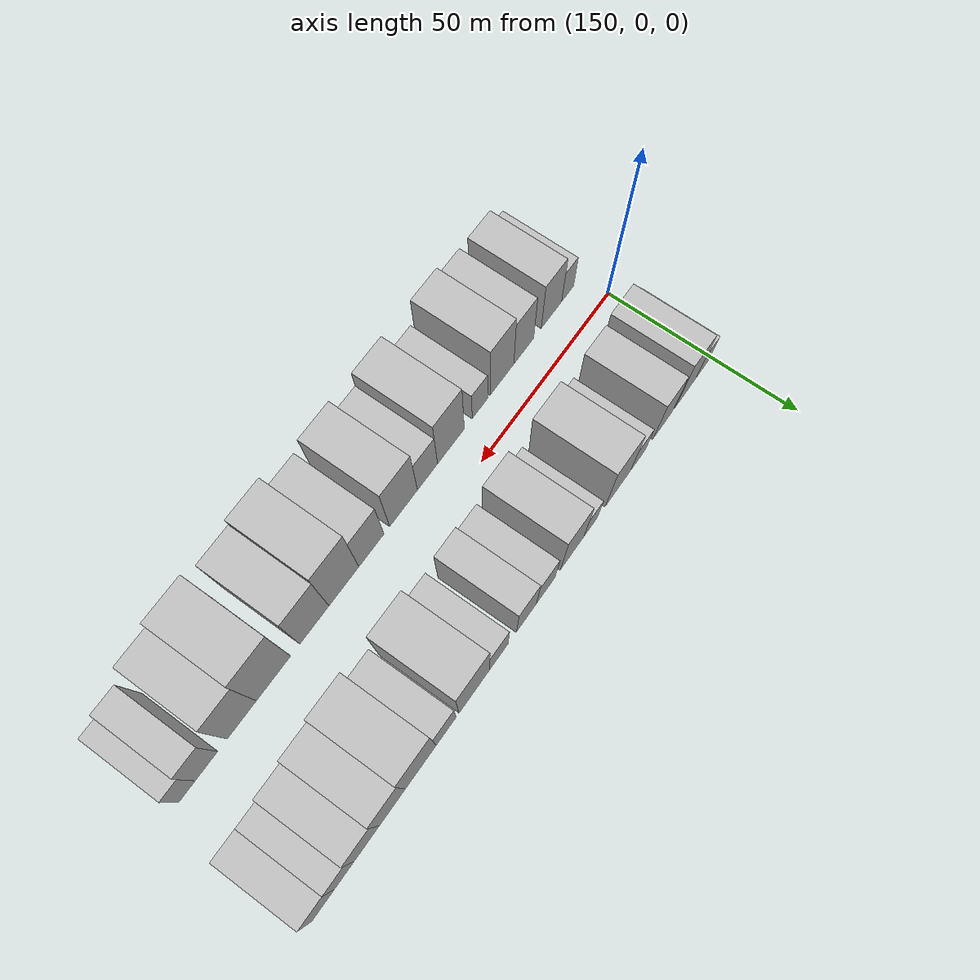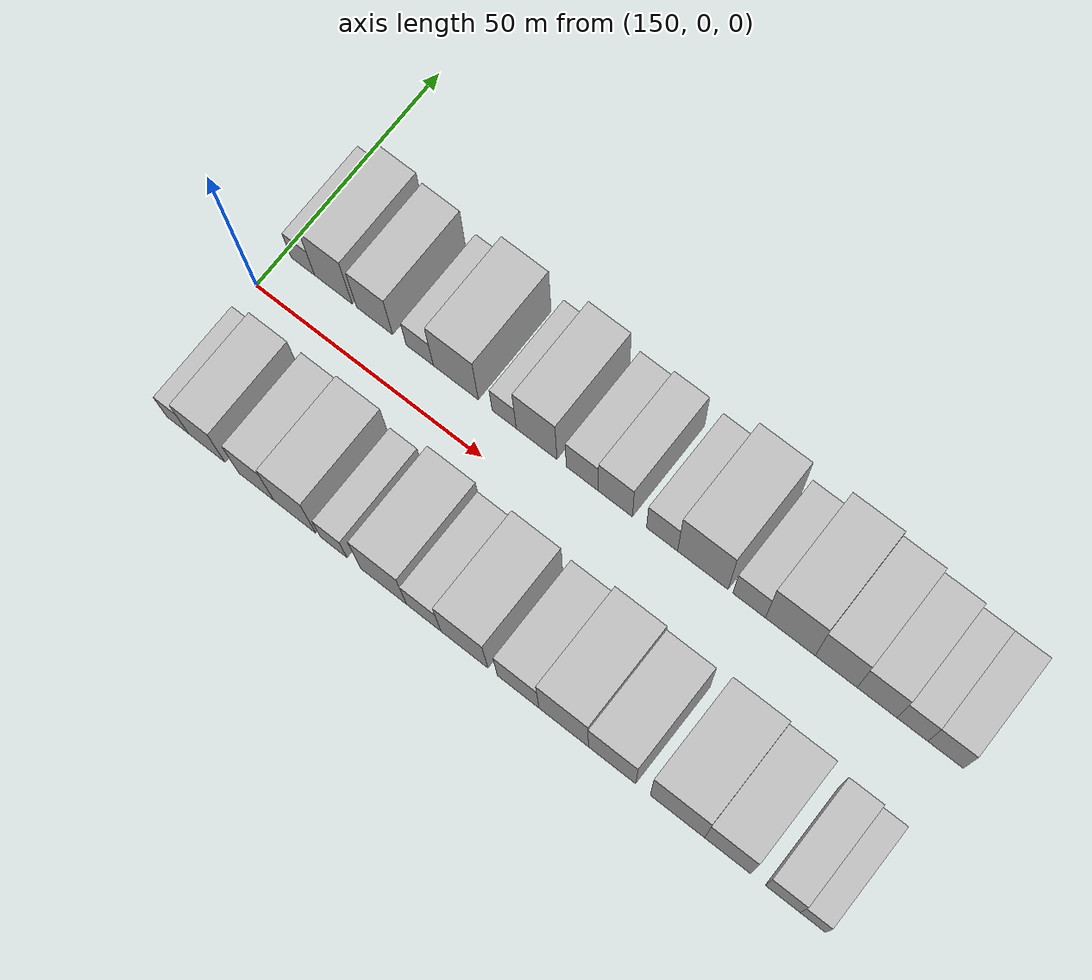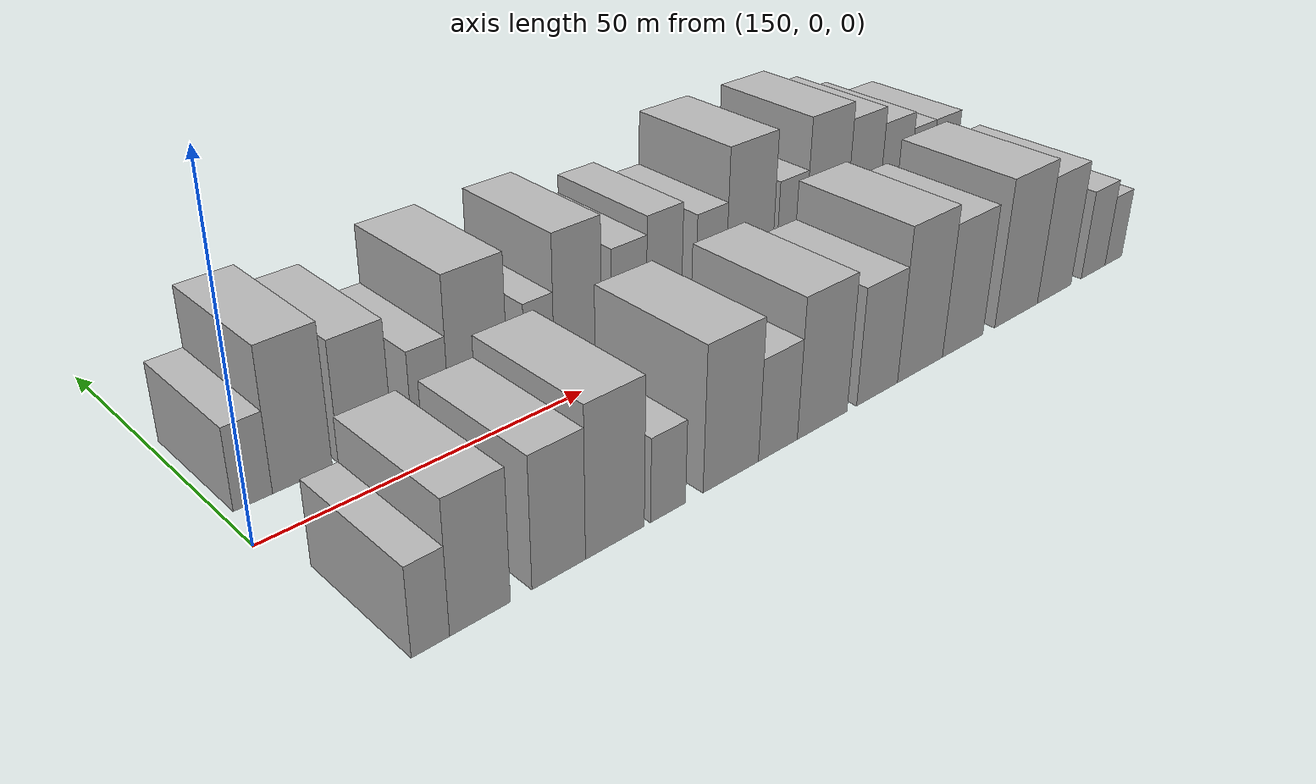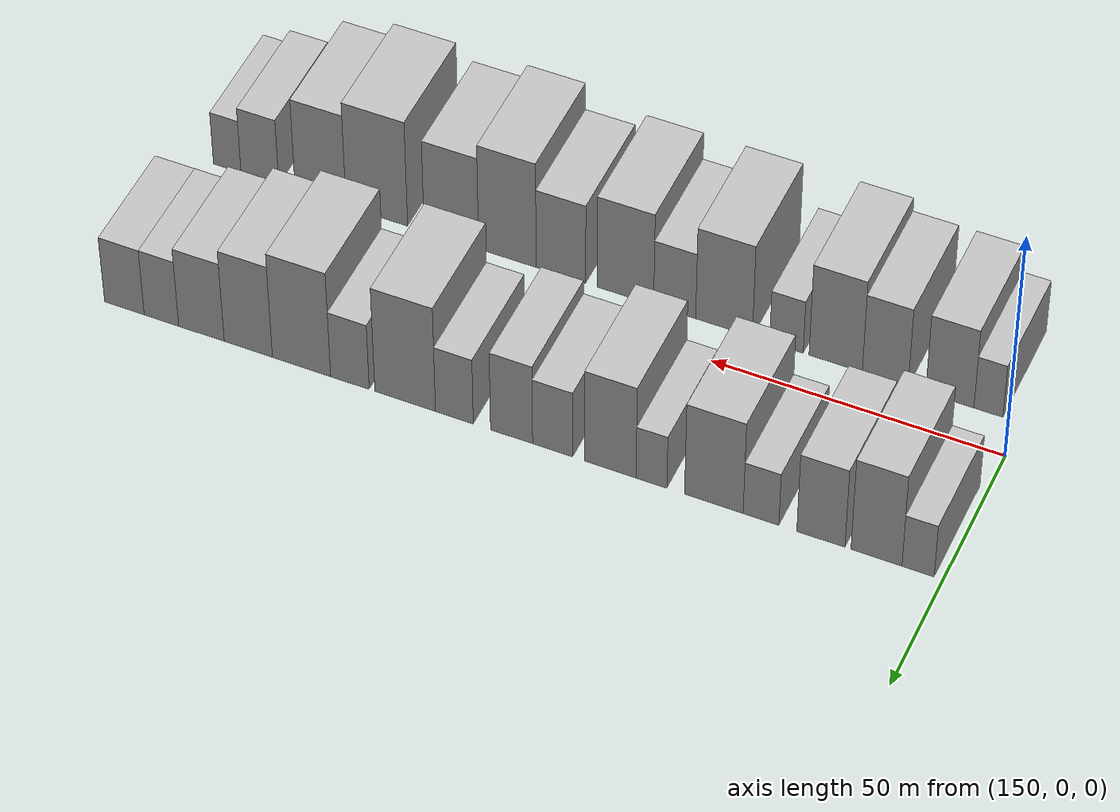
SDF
<sdf version="1.6">
 <world name="default">
  <model name="building_16">
   <static>1</static>
   <pose>154.1095 17.5000 0 0.000000 0.000000 1.570796</pose>
   <link name="link">
    <pose>0 0 6.00 0 0 0</pose>
    <collision name="collision"><geometry><box><size>20.0000 5.3130 12.0000</size></box></geometry></collision>
    <visual name="visual">
     <cast_shadows>0</cast_shadows>
     <geometry><box><size>20.0000 5.3130 12.0000</size></box></geometry>
     <material>
      <script>
       <uri>model://HANNAS_wall/materials/scripts</uri>
       <uri>model://HANNAS_wall/materials/textures</uri>
       <name>vrc/HANNAS_wall</name>
      </script>
     </material>
    </visual>
   </link>
  </model>
  <model name="building_17">
   <static>1</static>
   <pose>160.9851 17.5000 0 0.000000 0.000000 1.570796</pose>
   <link name="link">
    <pose>0 0 10.50 0 0 0</pose>
    <collision name="collision"><geometry><box><size>20.0000 8.4382 21.0000</size></box></geometry></collision>
    <visual name="visual">
     <cast_shadows>0</cast_shadows>
     <geometry><box><size>20.0000 8.4382 21.0000</size></box></geometry>
     <material>
      <script>
       <uri>model://HANNAS_wall/materials/scripts</uri>
       <uri>model://HANNAS_wall/materials/textures</uri>
       <name>vrc/HANNAS_wall</name>
      </script>
     </material>
    </visual>
   </link>
  </model>
  <model name="building_18">
   <static>1</static>
   <pose>170.2127 17.5000 0 0.000000 0.000000 1.570796</pose>
   <link name="link">
    <pose>0 0 9.00 0 0 0</pose>
    <collision name="collision"><geometry><box><size>20.0000 8.0170 18.0000</size></box></geometry></collision>
    <visual name="visual">
     <cast_shadows>0</cast_shadows>
     <geometry><box><size>20.0000 8.0170 18.0000</size></box></geometry>
     <material>
      <script>
       <uri>model://HANNAS_wall/materials/scripts</uri>
       <uri>model://HANNAS_wall/materials/textures</uri>
       <name>vrc/HANNAS_wall</name>
      </script>
     </material>
    </visual>
   </link>
  </model>
  <model name="building_19">
   <static>1</static>
   <pose>180.2199 17.5000 0 0.000000 0.000000 1.570796</pose>
   <link name="link">
    <pose>0 0 6.00 0 0 0</pose>
    <collision name="collision"><geometry><box><size>20.0000 5.9976 12.0000</size></box></geometry></collision>
    <visual name="visual">
     <cast_shadows>0</cast_shadows>
     <geometry><box><size>20.0000 5.9976 12.0000</size></box></geometry>
     <material>
      <script>
       <uri>model://HANNAS_wall/materials/scripts</uri>
       <uri>model://HANNAS_wall/materials/textures</uri>
       <name>vrc/HANNAS_wall</name>
      </script>
     </material>
    </visual>
   </link>
  </model>
  <model name="building_20">
   <static>1</static>
   <pose>188.1615 17.5000 0 0.000000 0.000000 1.570796</pose>
   <link name="link">
    <pose>0 0 10.50 0 0 0</pose>
    <collision name="collision"><geometry><box><size>20.0000 9.8854 21.0000</size></box></geometry></collision>
    <visual name="visual">
     <cast_shadows>0</cast_shadows>
     <geometry><box><size>20.0000 9.8854 21.0000</size></box></geometry>
     <material>
      <script>
       <uri>model://HANNAS_wall/materials/scripts</uri>
       <uri>model://HANNAS_wall/materials/textures</uri>
       <name>vrc/HANNAS_wall</name>
      </script>
     </material>
    </visual>
   </link>
  </model>
  <model name="building_21">
   <static>1</static>
   <pose>198.7292 17.5000 0 0.000000 0.000000 1.570796</pose>
   <link name="link">
    <pose>0 0 6.00 0 0 0</pose>
    <collision name="collision"><geometry><box><size>20.0000 5.2500 12.0000</size></box></geometry></collision>
    <visual name="visual">
     <cast_shadows>0</cast_shadows>
     <geometry><box><size>20.0000 5.2500 12.0000</size></box></geometry>
     <material>
      <script>
       <uri>model://HANNAS_wall/materials/scripts</uri>
       <uri>model://HANNAS_wall/materials/textures</uri>
       <name>vrc/HANNAS_wall</name>
      </script>
     </material>
    </visual>
   </link>
  </model>
  <model name="building_22">
   <static>1</static>
   <pose>205.7649 17.5000 0 0.000000 0.000000 1.570796</pose>
   <link name="link">
    <pose>0 0 10.50 0 0 0</pose>
    <collision name="collision"><geometry><box><size>20.0000 8.8215 21.0000</size></box></geometry></collision>
    <visual name="visual">
     <cast_shadows>0</cast_shadows>
     <geometry><box><size>20.0000 8.8215 21.0000</size></box></geometry>
     <material>
      <script>
       <uri>model://HANNAS_wall/materials/scripts</uri>
       <uri>model://HANNAS_wall/materials/textures</uri>
       <name>vrc/HANNAS_wall</name>
      </script>
     </material>
    </visual>
   </link>
  </model>
  <model name="building_23">
   <static>1</static>
   <pose>215.6237 17.5000 0 0.000000 0.000000 1.570796</pose>
   <link name="link">
    <pose>0 0 7.50 0 0 0</pose>
    <collision name="collision"><geometry><box><size>20.0000 6.8962 15.0000</size></box></geometry></collision>
    <visual name="visual">
     <cast_shadows>0</cast_shadows>
     <geometry><box><size>20.0000 6.8962 15.0000</size></box></geometry>
     <material>
      <script>
       <uri>model://HANNAS_wall/materials/scripts</uri>
       <uri>model://HANNAS_wall/materials/textures</uri>
       <name>vrc/HANNAS_wall</name>
      </script>
     </material>
    </visual>
   </link>
  </model>
  <model name="building_24">
   <static>1</static>
   <pose>222.7082 17.5000 0 0.000000 0.000000 1.570796</pose>
   <link name="link">
    <pose>0 0 9.00 0 0 0</pose>
    <collision name="collision"><geometry><box><size>20.0000 7.2728 18.0000</size></box></geometry></collision>
    <visual name="visual">
     <cast_shadows>0</cast_shadows>
     <geometry><box><size>20.0000 7.2728 18.0000</size></box></geometry>
     <material>
      <script>
       <uri>model://HANNAS_wall/materials/scripts</uri>
       <uri>model://HANNAS_wall/materials/textures</uri>
       <name>vrc/HANNAS_wall</name>
      </script>
     </material>
    </visual>
   </link>
  </model>
  <model name="building_25">
   <static>1</static>
   <pose>232.6329 17.5000 0 0.000000 0.000000 1.570796</pose>
   <link name="link">
    <pose>0 0 7.50 0 0 0</pose>
    <collision name="collision"><geometry><box><size>20.0000 6.5765 15.0000</size></box></geometry></collision>
    <visual name="visual">
     <cast_shadows>0</cast_shadows>
     <geometry><box><size>20.0000 6.5765 15.0000</size></box></geometry>
     <material>
      <script>
       <uri>model://HANNAS_wall/materials/scripts</uri>
       <uri>model://HANNAS_wall/materials/textures</uri>
       <name>vrc/HANNAS_wall</name>
      </script>
     </material>
    </visual>
   </link>
  </model>
  <model name="building_26">
   <static>1</static>
   <pose>241.2340 17.5000 0 0.000000 0.000000 1.570796</pose>
   <link name="link">
    <pose>0 0 12.00 0 0 0</pose>
    <collision name="collision"><geometry><box><size>20.0000 10.6257 24.0000</size></box></geometry></collision>
    <visual name="visual">
     <cast_shadows>0</cast_shadows>
     <geometry><box><size>20.0000 10.6257 24.0000</size></box></geometry>
     <material>
      <script>
       <uri>model://HANNAS_wall/materials/scripts</uri>
       <uri>model://HANNAS_wall/materials/textures</uri>
       <name>vrc/HANNAS_wall</name>
      </script>
     </material>
    </visual>
   </link>
  </model>
  <model name="building_27">
   <static>1</static>
   <pose>250.9435 17.5000 0 0.000000 0.000000 1.570796</pose>
   <link name="link">
    <pose>0 0 7.50 0 0 0</pose>
    <collision name="collision"><geometry><box><size>20.0000 6.7933 15.0000</size></box></geometry></collision>
    <visual name="visual">
     <cast_shadows>0</cast_shadows>
     <geometry><box><size>20.0000 6.7933 15.0000</size></box></geometry>
     <material>
      <script>
       <uri>model://HANNAS_wall/materials/scripts</uri>
       <uri>model://HANNAS_wall/materials/textures</uri>
       <name>vrc/HANNAS_wall</name>
      </script>
     </material>
    </visual>
   </link>
  </model>
  <model name="building_28">
   <static>1</static>
   <pose>259.5029 17.5000 0 0.000000 0.000000 1.570796</pose>
   <link name="link">
    <pose>0 0 12.00 0 0 0</pose>
    <collision name="collision"><geometry><box><size>20.0000 10.3254 24.0000</size></box></geometry></collision>
    <visual name="visual">
     <cast_shadows>0</cast_shadows>
     <geometry><box><size>20.0000 10.3254 24.0000</size></box></geometry>
     <material>
      <script>
       <uri>model://HANNAS_wall/materials/scripts</uri>
       <uri>model://HANNAS_wall/materials/textures</uri>
       <name>vrc/HANNAS_wall</name>
      </script>
     </material>
    </visual>
   </link>
  </model>
  <model name="building_29">
   <static>1</static>
   <pose>268.9678 17.5000 0 0.000000 0.000000 1.570796</pose>
   <link name="link">
    <pose>0 0 10.50 0 0 0</pose>
    <collision name="collision"><geometry><box><size>20.0000 8.6045 21.0000</size></box></geometry></collision>
    <visual name="visual">
     <cast_shadows>0</cast_shadows>
     <geometry><box><size>20.0000 8.6045 21.0000</size></box></geometry>
     <material>
      <script>
       <uri>model://HANNAS_wall/materials/scripts</uri>
       <uri>model://HANNAS_wall/materials/textures</uri>
       <name>vrc/HANNAS_wall</name>
      </script>
     </material>
    </visual>
   </link>
  </model>
  <model name="building_30">
   <static>1</static>
   <pose>277.3589 17.5000 0 0.000000 0.000000 1.570796</pose>
   <link name="link">
    <pose>0 0 9.00 0 0 0</pose>
    <collision name="collision"><geometry><box><size>20.0000 8.1776 18.0000</size></box></geometry></collision>
    <visual name="visual">
     <cast_shadows>0</cast_shadows>
     <geometry><box><size>20.0000 8.1776 18.0000</size></box></geometry>
     <material>
      <script>
       <uri>model://HANNAS_wall/materials/scripts</uri>
       <uri>model://HANNAS_wall/materials/textures</uri>
       <name>vrc/HANNAS_wall</name>
      </script>
     </material>
    </visual>
   </link>
  </model>
  <model name="building_31">
   <static>1</static>
   <pose>284.5624 17.5000 0 0.000000 0.000000 1.570796</pose>
   <link name="link">
    <pose>0 0 7.50 0 0 0</pose>
    <collision name="collision"><geometry><box><size>20.0000 6.2294 15.0000</size></box></geometry></collision>
    <visual name="visual">
     <cast_shadows>0</cast_shadows>
     <geometry><box><size>20.0000 6.2294 15.0000</size></box></geometry>
     <material>
      <script>
       <uri>model://HANNAS_wall/materials/scripts</uri>
       <uri>model://HANNAS_wall/materials/textures</uri>
       <name>vrc/HANNAS_wall</name>
      </script>
     </material>
    </visual>
   </link>
  </model>
  <model name="building_32">
   <static>1</static>
   <pose>291.2573 17.5000 0 0.000000 0.000000 1.570796</pose>
   <link name="link">
    <pose>0 0 7.50 0 0 0</pose>
    <collision name="collision"><geometry><box><size>20.0000 7.1604 15.0000</size></box></geometry></collision>
    <visual name="visual">
     <cast_shadows>0</cast_shadows>
     <geometry><box><size>20.0000 7.1604 15.0000</size></box></geometry>
     <material>
      <script>
       <uri>model://HANNAS_wall/materials/scripts</uri>
       <uri>model://HANNAS_wall/materials/textures</uri>
       <name>vrc/HANNAS_wall</name>
      </script>
     </material>
    </visual>
   </link>
  </model>
  <model name="building_47">
   <static>1</static>
   <pose>155.6169 -17.5000 0 0.000000 0.000000 1.570796</pose>
   <link name="link">
    <pose>0 0 6.00 0 0 0</pose>
    <collision name="collision"><geometry><box><size>20.0000 4.9023 12.0000</size></box></geometry></collision>
    <visual name="visual">
     <cast_shadows>0</cast_shadows>
     <geometry><box><size>20.0000 4.9023 12.0000</size></box></geometry>
     <material>
      <script>
       <uri>model://HANNAS_wall/materials/scripts</uri>
       <uri>model://HANNAS_wall/materials/textures</uri>
       <name>vrc/HANNAS_wall</name>
      </script>
     </material>
    </visual>
   </link>
  </model>
  <model name="building_48">
   <static>1</static>
   <pose>162.1531 -17.5000 0 0.000000 0.000000 1.570796</pose>
   <link name="link">
    <pose>0 0 9.00 0 0 0</pose>
    <collision name="collision"><geometry><box><size>20.0000 8.1699 18.0000</size></box></geometry></collision>
    <visual name="visual">
     <cast_shadows>0</cast_shadows>
     <geometry><box><size>20.0000 8.1699 18.0000</size></box></geometry>
     <material>
      <script>
       <uri>model://HANNAS_wall/materials/scripts</uri>
       <uri>model://HANNAS_wall/materials/textures</uri>
       <name>vrc/HANNAS_wall</name>
      </script>
     </material>
    </visual>
   </link>
  </model>
  <model name="building_49">
   <static>1</static>
   <pose>173.1528 -17.5000 0 0.000000 0.000000 1.570796</pose>
   <link name="link">
    <pose>0 0 9.00 0 0 0</pose>
    <collision name="collision"><geometry><box><size>20.0000 7.8295 18.0000</size></box></geometry></collision>
    <visual name="visual">
     <cast_shadows>0</cast_shadows>
     <geometry><box><size>20.0000 7.8295 18.0000</size></box></geometry>
     <material>
      <script>
       <uri>model://HANNAS_wall/materials/scripts</uri>
       <uri>model://HANNAS_wall/materials/textures</uri>
       <name>vrc/HANNAS_wall</name>
      </script>
     </material>
    </visual>
   </link>
  </model>
  <model name="building_50">
   <static>1</static>
   <pose>181.6432 -17.5000 0 0.000000 0.000000 1.570796</pose>
   <link name="link">
    <pose>0 0 10.50 0 0 0</pose>
    <collision name="collision"><geometry><box><size>20.0000 9.1513 21.0000</size></box></geometry></collision>
    <visual name="visual">
     <cast_shadows>0</cast_shadows>
     <geometry><box><size>20.0000 9.1513 21.0000</size></box></geometry>
     <material>
      <script>
       <uri>model://HANNAS_wall/materials/scripts</uri>
       <uri>model://HANNAS_wall/materials/textures</uri>
       <name>vrc/HANNAS_wall</name>
      </script>
     </material>
    </visual>
   </link>
  </model>
  <model name="building_51">
   <static>1</static>
   <pose>190.1180 -17.5000 0 0.000000 0.000000 1.570796</pose>
   <link name="link">
    <pose>0 0 6.00 0 0 0</pose>
    <collision name="collision"><geometry><box><size>20.0000 5.7983 12.0000</size></box></geometry></collision>
    <visual name="visual">
     <cast_shadows>0</cast_shadows>
     <geometry><box><size>20.0000 5.7983 12.0000</size></box></geometry>
     <material>
      <script>
       <uri>model://HANNAS_wall/materials/scripts</uri>
       <uri>model://HANNAS_wall/materials/textures</uri>
       <name>vrc/HANNAS_wall</name>
      </script>
     </material>
    </visual>
   </link>
  </model>
  <model name="building_52">
   <static>1</static>
   <pose>200.9670 -17.5000 0 0.000000 0.000000 1.570796</pose>
   <link name="link">
    <pose>0 0 10.50 0 0 0</pose>
    <collision name="collision"><geometry><box><size>20.0000 9.8997 21.0000</size></box></geometry></collision>
    <visual name="visual">
     <cast_shadows>0</cast_shadows>
     <geometry><box><size>20.0000 9.8997 21.0000</size></box></geometry>
     <material>
      <script>
       <uri>model://HANNAS_wall/materials/scripts</uri>
       <uri>model://HANNAS_wall/materials/textures</uri>
       <name>vrc/HANNAS_wall</name>
      </script>
     </material>
    </visual>
   </link>
  </model>
  <model name="building_53">
   <static>1</static>
   <pose>209.5928 -17.5000 0 0.000000 0.000000 1.570796</pose>
   <link name="link">
    <pose>0 0 7.50 0 0 0</pose>
    <collision name="collision"><geometry><box><size>20.0000 7.3520 15.0000</size></box></geometry></collision>
    <visual name="visual">
     <cast_shadows>0</cast_shadows>
     <geometry><box><size>20.0000 7.3520 15.0000</size></box></geometry>
     <material>
      <script>
       <uri>model://HANNAS_wall/materials/scripts</uri>
       <uri>model://HANNAS_wall/materials/textures</uri>
       <name>vrc/HANNAS_wall</name>
      </script>
     </material>
    </visual>
   </link>
  </model>
  <model name="building_54">
   <static>1</static>
   <pose>218.2626 -17.5000 0 0.000000 0.000000 1.570796</pose>
   <link name="link">
    <pose>0 0 10.50 0 0 0</pose>
    <collision name="collision"><geometry><box><size>20.0000 9.9875 21.0000</size></box></geometry></collision>
    <visual name="visual">
     <cast_shadows>0</cast_shadows>
     <geometry><box><size>20.0000 9.9875 21.0000</size></box></geometry>
     <material>
      <script>
       <uri>model://HANNAS_wall/materials/scripts</uri>
       <uri>model://HANNAS_wall/materials/textures</uri>
       <name>vrc/HANNAS_wall</name>
      </script>
     </material>
    </visual>
   </link>
  </model>
  <model name="building_55">
   <static>1</static>
   <pose>229.6453 -17.5000 0 0.000000 0.000000 1.570796</pose>
   <link name="link">
    <pose>0 0 9.00 0 0 0</pose>
    <collision name="collision"><geometry><box><size>20.0000 8.7778 18.0000</size></box></geometry></collision>
    <visual name="visual">
     <cast_shadows>0</cast_shadows>
     <geometry><box><size>20.0000 8.7778 18.0000</size></box></geometry>
     <material>
      <script>
       <uri>model://HANNAS_wall/materials/scripts</uri>
       <uri>model://HANNAS_wall/materials/textures</uri>
       <name>vrc/HANNAS_wall</name>
      </script>
     </material>
    </visual>
   </link>
  </model>
  <model name="building_56">
   <static>1</static>
   <pose>239.1777 -17.5000 0 0.000000 0.000000 1.570796</pose>
   <link name="link">
    <pose>0 0 12.00 0 0 0</pose>
    <collision name="collision"><geometry><box><size>20.0000 10.2870 24.0000</size></box></geometry></collision>
    <visual name="visual">
     <cast_shadows>0</cast_shadows>
     <geometry><box><size>20.0000 10.2870 24.0000</size></box></geometry>
     <material>
      <script>
       <uri>model://HANNAS_wall/materials/scripts</uri>
       <uri>model://HANNAS_wall/materials/textures</uri>
       <name>vrc/HANNAS_wall</name>
      </script>
     </material>
    </visual>
   </link>
  </model>
  <model name="building_57">
   <static>1</static>
   <pose>249.2246 -17.5000 0 0.000000 0.000000 1.570796</pose>
   <link name="link">
    <pose>0 0 10.50 0 0 0</pose>
    <collision name="collision"><geometry><box><size>20.0000 9.8068 21.0000</size></box></geometry></collision>
    <visual name="visual">
     <cast_shadows>0</cast_shadows>
     <geometry><box><size>20.0000 9.8068 21.0000</size></box></geometry>
     <material>
      <script>
       <uri>model://HANNAS_wall/materials/scripts</uri>
       <uri>model://HANNAS_wall/materials/textures</uri>
       <name>vrc/HANNAS_wall</name>
      </script>
     </material>
    </visual>
   </link>
  </model>
  <model name="building_58">
   <static>1</static>
   <pose>262.7201 -17.5000 0 0.000000 0.000000 1.570796</pose>
   <link name="link">
    <pose>0 0 12.00 0 0 0</pose>
    <collision name="collision"><geometry><box><size>20.0000 11.1844 24.0000</size></box></geometry></collision>
    <visual name="visual">
     <cast_shadows>0</cast_shadows>
     <geometry><box><size>20.0000 11.1844 24.0000</size></box></geometry>
     <material>
      <script>
       <uri>model://HANNAS_wall/materials/scripts</uri>
       <uri>model://HANNAS_wall/materials/textures</uri>
       <name>vrc/HANNAS_wall</name>
      </script>
     </material>
    </visual>
   </link>
  </model>
  <model name="building_59">
   <static>1</static>
   <pose>272.9662 -17.5000 0 0.000000 0.000000 1.570796</pose>
   <link name="link">
    <pose>0 0 10.50 0 0 0</pose>
    <collision name="collision"><geometry><box><size>20.0000 9.3078 21.0000</size></box></geometry></collision>
    <visual name="visual">
     <cast_shadows>0</cast_shadows>
     <geometry><box><size>20.0000 9.3078 21.0000</size></box></geometry>
     <material>
      <script>
       <uri>model://HANNAS_wall/materials/scripts</uri>
       <uri>model://HANNAS_wall/materials/textures</uri>
       <name>vrc/HANNAS_wall</name>
      </script>
     </material>
    </visual>
   </link>
  </model>
  <model name="building_60">
   <static>1</static>
   <pose>284.1089 -17.5000 0 0.000000 0.000000 1.570796</pose>
   <link name="link">
    <pose>0 0 7.50 0 0 0</pose>
    <collision name="collision"><geometry><box><size>20.0000 6.9774 15.0000</size></box></geometry></collision>
    <visual name="visual">
     <cast_shadows>0</cast_shadows>
     <geometry><box><size>20.0000 6.9774 15.0000</size></box></geometry>
     <material>
      <script>
       <uri>model://HANNAS_wall/materials/scripts</uri>
       <uri>model://HANNAS_wall/materials/textures</uri>
       <name>vrc/HANNAS_wall</name>
      </script>
     </material>
    </visual>
   </link>
  </model>
  <model name="building_61">
   <static>1</static>
   <pose>290.1352 -17.5000 0 0.000000 0.000000 1.570796</pose>
   <link name="link">
    <pose>0 0 6.00 0 0 0</pose>
    <collision name="collision"><geometry><box><size>20.0000 5.0753 12.0000</size></box></geometry></collision>
    <visual name="visual">
     <cast_shadows>0</cast_shadows>
     <geometry><box><size>20.0000 5.0753 12.0000</size></box></geometry>
     <material>
      <script>
       <uri>model://HANNAS_wall/materials/scripts</uri>
       <uri>model://HANNAS_wall/materials/textures</uri>
       <name>vrc/HANNAS_wall</name>
      </script>
     </material>
    </visual>
   </link>
  </model>
 </world>
</sdf>
